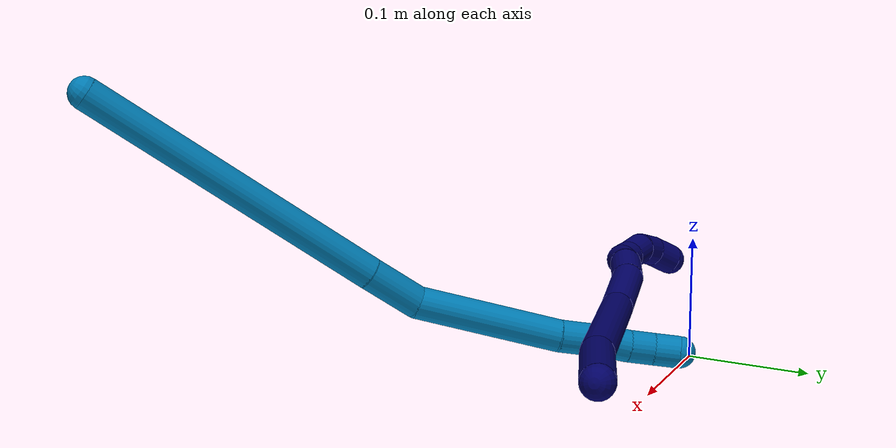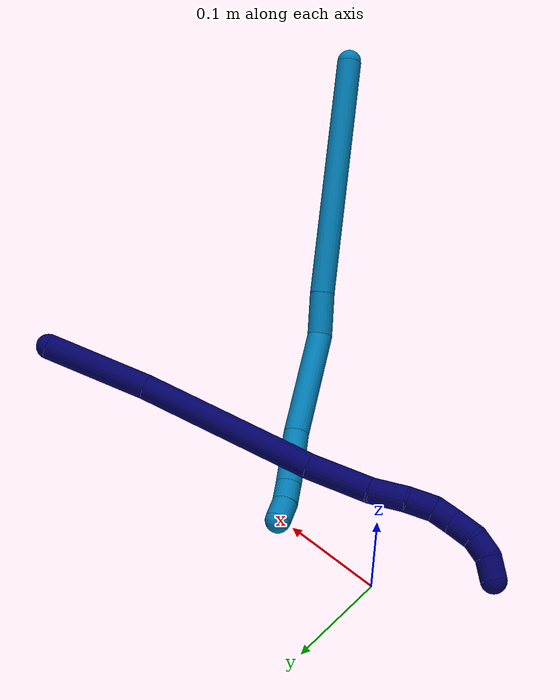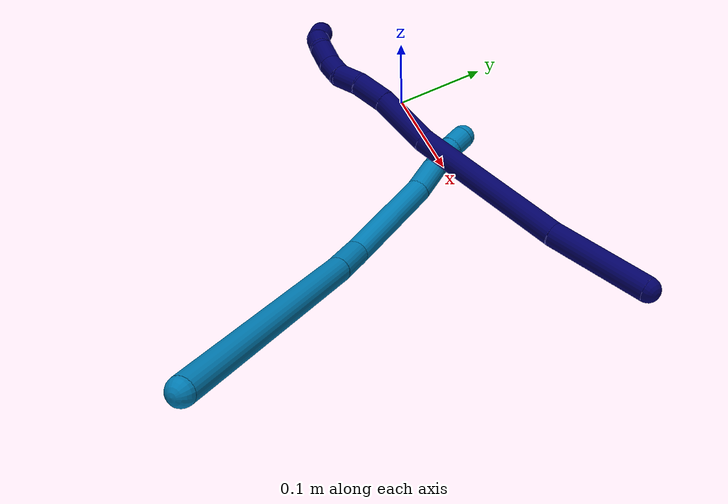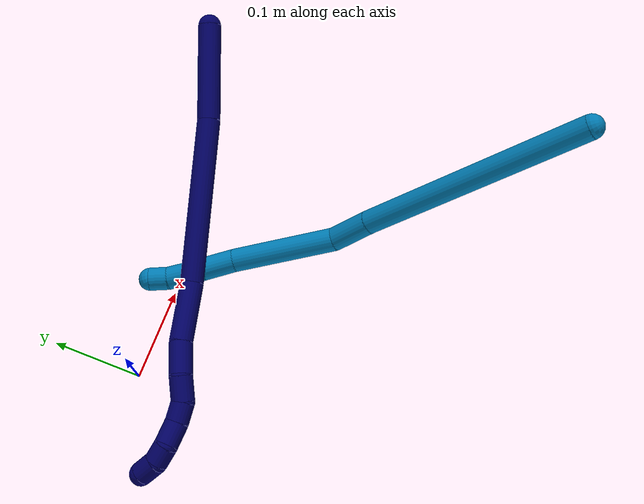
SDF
<sdf version="1.7">
 <world name="default">
  <model name="7">
   <static>0</static>
   <link name="7">
    <collision name="collision-cylinder-e_1_1_4">
     <pose>-0.00505 -0.010584 -0.051644 2.93945 -0.095505 -0.880684</pose>
     <geometry><cylinder><radius>0.0125</radius><length>0.105917</length></cylinder></geometry>
     <surface>
      <friction><ode><mu>1.16</mu><mu2>1.16</mu2><slip1>0</slip1><slip2>0</slip2></ode></friction>
      <contact><ode><kp>1e+06</kp><kd>1</kd><max_vel>0</max_vel><min_depth>0.001</min_depth></ode></contact>
     </surface>
    </collision>
    <visual name="visual-cylinder-e_1_1_4">
     <pose>-0.00505 -0.010584 -0.051644 2.93945 -0.095505 -0.880684</pose>
     <geometry><cylinder><radius>0.0125</radius><length>0.105917</length></cylinder></geometry>
     <material><ambient>0.003922 0 0.403922 1</ambient></material>
    </visual>
    <collision name="collision-cylinder-e_2_4_5">
     <pose>-0.021445 -0.031274 -0.191077 3.02699 -0.127685 -1.67893</pose>
     <geometry><cylinder><radius>0.0125</radius><length>0.178189</length></cylinder></geometry>
     <surface>
      <friction><ode><mu>1.16</mu><mu2>1.16</mu2><slip1>0</slip1><slip2>0</slip2></ode></friction>
      <contact><ode><kp>1e+06</kp><kd>1</kd><max_vel>0</max_vel><min_depth>0.001</min_depth></ode></contact>
     </surface>
    </collision>
    <visual name="visual-cylinder-e_2_4_5">
     <pose>-0.021445 -0.031274 -0.191077 3.02699 -0.127685 -1.67893</pose>
     <geometry><cylinder><radius>0.0125</radius><length>0.178189</length></cylinder></geometry>
     <material><ambient>0.003922 0 0.403922 1</ambient></material>
    </visual>
    <collision name="collision-cylinder-e_3_5_6">
     <pose>-0.043324 -0.043508 -0.309485 3.07219 -0.330593 -2.73122</pose>
     <geometry><cylinder><radius>0.0125</radius><length>0.064901</length></cylinder></geometry>
     <surface>
      <friction><ode><mu>1.16</mu><mu2>1.16</mu2><slip1>0</slip1><slip2>0</slip2></ode></friction>
      <contact><ode><kp>1e+06</kp><kd>1</kd><max_vel>0</max_vel><min_depth>0.001</min_depth></ode></contact>
     </surface>
    </collision>
    <visual name="visual-cylinder-e_3_5_6">
     <pose>-0.043324 -0.043508 -0.309485 3.07219 -0.330593 -2.73122</pose>
     <geometry><cylinder><radius>0.0125</radius><length>0.064901</length></cylinder></geometry>
     <material><ambient>0.003922 0 0.403922 1</ambient></material>
    </visual>
    <collision name="collision-cylinder-e_4_6_7">
     <pose>-0.059106 -0.049797 -0.356157 2.88798 -0.306528 -1.76163</pose>
     <geometry><cylinder><radius>0.0125</radius><length>0.034786</length></cylinder></geometry>
     <surface>
      <friction><ode><mu>1.16</mu><mu2>1.16</mu2><slip1>0</slip1><slip2>0</slip2></ode></friction>
      <contact><ode><kp>1e+06</kp><kd>1</kd><max_vel>0</max_vel><min_depth>0.001</min_depth></ode></contact>
     </surface>
    </collision>
    <visual name="visual-cylinder-e_4_6_7">
     <pose>-0.059106 -0.049797 -0.356157 2.88798 -0.306528 -1.76163</pose>
     <geometry><cylinder><radius>0.0125</radius><length>0.034786</length></cylinder></geometry>
     <material><ambient>0.003922 0 0.403922 1</ambient></material>
    </visual>
    <collision name="collision-cylinder-e_5_7_8">
     <pose>-0.065331 -0.057884 -0.385107 2.84606 -0.072311 -0.476759</pose>
     <geometry><cylinder><radius>0.0125</radius><length>0.027038</length></cylinder></geometry>
     <surface>
      <friction><ode><mu>1.16</mu><mu2>1.16</mu2><slip1>0</slip1><slip2>0</slip2></ode></friction>
      <contact><ode><kp>1e+06</kp><kd>1</kd><max_vel>0</max_vel><min_depth>0.001</min_depth></ode></contact>
     </surface>
    </collision>
    <visual name="visual-cylinder-e_5_7_8">
     <pose>-0.065331 -0.057884 -0.385107 2.84606 -0.072311 -0.476759</pose>
     <geometry><cylinder><radius>0.0125</radius><length>0.027038</length></cylinder></geometry>
     <material><ambient>0.003922 0 0.403922 1</ambient></material>
    </visual>
    <collision name="collision-cylinder-e_6_8_9">
     <pose>-0.067801 -0.060957 -0.408676 -3.06166 -0.13864 2.09657</pose>
     <geometry><cylinder><radius>0.0125</radius><length>0.021615</length></cylinder></geometry>
     <surface>
      <friction><ode><mu>1.16</mu><mu2>1.16</mu2><slip1>0</slip1><slip2>0</slip2></ode></friction>
      <contact><ode><kp>1e+06</kp><kd>1</kd><max_vel>0</max_vel><min_depth>0.001</min_depth></ode></contact>
     </surface>
    </collision>
    <visual name="visual-cylinder-e_6_8_9">
     <pose>-0.067801 -0.060957 -0.408676 -3.06166 -0.13864 2.09657</pose>
     <geometry><cylinder><radius>0.0125</radius><length>0.021615</length></cylinder></geometry>
     <material><ambient>0.003922 0 0.403922 1</ambient></material>
    </visual>
    <collision name="collision-cylinder-e_7_9_10">
     <pose>-0.072755 -0.0575 -0.431098 -2.92371 -0.279888 1.82117</pose>
     <geometry><cylinder><radius>0.0125</radius><length>0.025049</length></cylinder></geometry>
     <surface>
      <friction><ode><mu>1.16</mu><mu2>1.16</mu2><slip1>0</slip1><slip2>0</slip2></ode></friction>
      <contact><ode><kp>1e+06</kp><kd>1</kd><max_vel>0</max_vel><min_depth>0.001</min_depth></ode></contact>
     </surface>
    </collision>
    <visual name="visual-cylinder-e_7_9_10">
     <pose>-0.072755 -0.0575 -0.431098 -2.92371 -0.279888 1.82117</pose>
     <geometry><cylinder><radius>0.0125</radius><length>0.025049</length></cylinder></geometry>
     <material><ambient>0.003922 0 0.403922 1</ambient></material>
    </visual>
    <collision name="collision-cylinder-e_8_10_11">
     <pose>-0.075286 -0.051331 -0.452482 -2.78686 0.090151 -0.493041</pose>
     <geometry><cylinder><radius>0.0125</radius><length>0.020628</length></cylinder></geometry>
     <surface>
      <friction><ode><mu>1.16</mu><mu2>1.16</mu2><slip1>0</slip1><slip2>0</slip2></ode></friction>
      <contact><ode><kp>1e+06</kp><kd>1</kd><max_vel>0</max_vel><min_depth>0.001</min_depth></ode></contact>
     </surface>
    </collision>
    <visual name="visual-cylinder-e_8_10_11">
     <pose>-0.075286 -0.051331 -0.452482 -2.78686 0.090151 -0.493041</pose>
     <geometry><cylinder><radius>0.0125</radius><length>0.020628</length></cylinder></geometry>
     <material><ambient>0.003922 0 0.403922 1</ambient></material>
    </visual>
    <collision name="collision-cylinder-e_9_11_2">
     <pose>-0.071199 -0.041023 -0.470132 -2.44252 0.292879 -0.769015</pose>
     <geometry><cylinder><radius>0.0125</radius><length>0.021879</length></cylinder></geometry>
     <surface>
      <friction><ode><mu>1.16</mu><mu2>1.16</mu2><slip1>0</slip1><slip2>0</slip2></ode></friction>
      <contact><ode><kp>1e+06</kp><kd>1</kd><max_vel>0</max_vel><min_depth>0.001</min_depth></ode></contact>
     </surface>
    </collision>
    <visual name="visual-cylinder-e_9_11_2">
     <pose>-0.071199 -0.041023 -0.470132 -2.44252 0.292879 -0.769015</pose>
     <geometry><cylinder><radius>0.0125</radius><length>0.021879</length></cylinder></geometry>
     <material><ambient>0.003922 0 0.403922 1</ambient></material>
    </visual>
    <collision name="collision-sphere-2">
     <pose>-0.068041 -0.034283 -0.478149 0 -0 0</pose>
     <geometry><sphere><radius>0.0125</radius></sphere></geometry>
     <surface>
      <friction><ode><mu>1.16</mu><mu2>1.16</mu2><slip1>0</slip1><slip2>0</slip2></ode></friction>
      <contact><ode><kp>1e+06</kp><kd>1</kd><max_vel>0</max_vel><min_depth>0.001</min_depth></ode></contact>
     </surface>
    </collision>
    <visual name="visual-sphere-2">
     <pose>-0.068041 -0.034283 -0.478149 0 -0 0</pose>
     <geometry><sphere><radius>0.0125</radius></sphere></geometry>
     <material><ambient>0.003922 0 0.403922 1</ambient></material>
    </visual>
    <collision name="collision-sphere-11">
     <pose>-0.074357 -0.047763 -0.462115 0 -0 0</pose>
     <geometry><sphere><radius>0.0125</radius></sphere></geometry>
     <surface>
      <friction><ode><mu>1.16</mu><mu2>1.16</mu2><slip1>0</slip1><slip2>0</slip2></ode></friction>
      <contact><ode><kp>1e+06</kp><kd>1</kd><max_vel>0</max_vel><min_depth>0.001</min_depth></ode></contact>
     </surface>
    </collision>
    <visual name="visual-sphere-11">
     <pose>-0.074357 -0.047763 -0.462115 0 -0 0</pose>
     <geometry><sphere><radius>0.0125</radius></sphere></geometry>
     <material><ambient>0.003922 0 0.403922 1</ambient></material>
    </visual>
    <collision name="collision-sphere-10">
     <pose>-0.076214 -0.054898 -0.44285 0 -0 0</pose>
     <geometry><sphere><radius>0.0125</radius></sphere></geometry>
     <surface>
      <friction><ode><mu>1.16</mu><mu2>1.16</mu2><slip1>0</slip1><slip2>0</slip2></ode></friction>
      <contact><ode><kp>1e+06</kp><kd>1</kd><max_vel>0</max_vel><min_depth>0.001</min_depth></ode></contact>
     </surface>
    </collision>
    <visual name="visual-sphere-10">
     <pose>-0.076214 -0.054898 -0.44285 0 -0 0</pose>
     <geometry><sphere><radius>0.0125</radius></sphere></geometry>
     <material><ambient>0.003922 0 0.403922 1</ambient></material>
    </visual>
    <collision name="collision-sphere-9">
     <pose>-0.069295 -0.060102 -0.419345 0 -0 0</pose>
     <geometry><sphere><radius>0.0125</radius></sphere></geometry>
     <surface>
      <friction><ode><mu>1.16</mu><mu2>1.16</mu2><slip1>0</slip1><slip2>0</slip2></ode></friction>
      <contact><ode><kp>1e+06</kp><kd>1</kd><max_vel>0</max_vel><min_depth>0.001</min_depth></ode></contact>
     </surface>
    </collision>
    <visual name="visual-sphere-9">
     <pose>-0.069295 -0.060102 -0.419345 0 -0 0</pose>
     <geometry><sphere><radius>0.0125</radius></sphere></geometry>
     <material><ambient>0.003922 0 0.403922 1</ambient></material>
    </visual>
    <collision name="collision-sphere-4">
     <pose>-0.0101 -0.021168 -0.103287 0 -0 0</pose>
     <geometry><sphere><radius>0.0125</radius></sphere></geometry>
     <surface>
      <friction><ode><mu>1.16</mu><mu2>1.16</mu2><slip1>0</slip1><slip2>0</slip2></ode></friction>
      <contact><ode><kp>1e+06</kp><kd>1</kd><max_vel>0</max_vel><min_depth>0.001</min_depth></ode></contact>
     </surface>
    </collision>
    <visual name="visual-sphere-4">
     <pose>-0.0101 -0.021168 -0.103287 0 -0 0</pose>
     <geometry><sphere><radius>0.0125</radius></sphere></geometry>
     <material><ambient>0.003922 0 0.403922 1</ambient></material>
    </visual>
    <collision name="collision-sphere-1">
     <geometry><sphere><radius>0.0125</radius></sphere></geometry>
     <surface>
      <friction><ode><mu>1.16</mu><mu2>1.16</mu2><slip1>0</slip1><slip2>0</slip2></ode></friction>
      <contact><ode><kp>1e+06</kp><kd>1</kd><max_vel>0</max_vel><min_depth>0.001</min_depth></ode></contact>
     </surface>
    </collision>
    <visual name="visual-sphere-1">
     <geometry><sphere><radius>0.0125</radius></sphere></geometry>
     <material><ambient>0.003922 0 0.403922 1</ambient></material>
    </visual>
    <collision name="collision-sphere-8">
     <pose>-0.066308 -0.061812 -0.398006 0 -0 0</pose>
     <geometry><sphere><radius>0.0125</radius></sphere></geometry>
     <surface>
      <friction><ode><mu>1.16</mu><mu2>1.16</mu2><slip1>0</slip1><slip2>0</slip2></ode></friction>
      <contact><ode><kp>1e+06</kp><kd>1</kd><max_vel>0</max_vel><min_depth>0.001</min_depth></ode></contact>
     </surface>
    </collision>
    <visual name="visual-sphere-8">
     <pose>-0.066308 -0.061812 -0.398006 0 -0 0</pose>
     <geometry><sphere><radius>0.0125</radius></sphere></geometry>
     <material><ambient>0.003922 0 0.403922 1</ambient></material>
    </visual>
    <collision name="collision-sphere-5">
     <pose>-0.032791 -0.041379 -0.278866 0 -0 0</pose>
     <geometry><sphere><radius>0.0125</radius></sphere></geometry>
     <surface>
      <friction><ode><mu>1.16</mu><mu2>1.16</mu2><slip1>0</slip1><slip2>0</slip2></ode></friction>
      <contact><ode><kp>1e+06</kp><kd>1</kd><max_vel>0</max_vel><min_depth>0.001</min_depth></ode></contact>
     </surface>
    </collision>
    <visual name="visual-sphere-5">
     <pose>-0.032791 -0.041379 -0.278866 0 -0 0</pose>
     <geometry><sphere><radius>0.0125</radius></sphere></geometry>
     <material><ambient>0.003922 0 0.403922 1</ambient></material>
    </visual>
    <collision name="collision-sphere-6">
     <pose>-0.053858 -0.045636 -0.340105 0 -0 0</pose>
     <geometry><sphere><radius>0.0125</radius></sphere></geometry>
     <surface>
      <friction><ode><mu>1.16</mu><mu2>1.16</mu2><slip1>0</slip1><slip2>0</slip2></ode></friction>
      <contact><ode><kp>1e+06</kp><kd>1</kd><max_vel>0</max_vel><min_depth>0.001</min_depth></ode></contact>
     </surface>
    </collision>
    <visual name="visual-sphere-6">
     <pose>-0.053858 -0.045636 -0.340105 0 -0 0</pose>
     <geometry><sphere><radius>0.0125</radius></sphere></geometry>
     <material><ambient>0.003922 0 0.403922 1</ambient></material>
    </visual>
    <collision name="collision-sphere-7">
     <pose>-0.064354 -0.053957 -0.372208 0 -0 0</pose>
     <geometry><sphere><radius>0.0125</radius></sphere></geometry>
     <surface>
      <friction><ode><mu>1.16</mu><mu2>1.16</mu2><slip1>0</slip1><slip2>0</slip2></ode></friction>
      <contact><ode><kp>1e+06</kp><kd>1</kd><max_vel>0</max_vel><min_depth>0.001</min_depth></ode></contact>
     </surface>
    </collision>
    <visual name="visual-sphere-7">
     <pose>-0.064354 -0.053957 -0.372208 0 -0 0</pose>
     <geometry><sphere><radius>0.0125</radius></sphere></geometry>
     <material><ambient>0.003922 0 0.403922 1</ambient></material>
    </visual>
    <inertial>
     <pose>-0.034778 -0.035058 -0.243313 0 -0 0</pose>
     <mass>0.5</mass>
     <inertia>
      <ixx>-0.000575</ixx>
      <ixy>0</ixy>
      <ixz>0</ixz>
      <iyy>-0.00055</iyy>
      <iyz>0</iyz>
      <izz>0.00012</izz>
     </inertia>
    </inertial>
   </link>
   <pose>0.369692 0.061767 0.111955 -0.061059 1.29769 0.108005</pose>
  </model>
  <model name="9">
   <static>0</static>
   <link name="9">
    <collision name="collision-cylinder-e_1_1_4">
     <pose>-0.006114 0.003109 -0.123856 -3.1165 -0.049306 2.20006</pose>
     <geometry><cylinder><radius>0.0125</radius><length>0.248092</length></cylinder></geometry>
     <surface>
      <friction><ode><mu>1.16</mu><mu2>1.16</mu2><slip1>0</slip1><slip2>0</slip2></ode></friction>
      <contact><ode><kp>1e+06</kp><kd>1</kd><max_vel>0</max_vel><min_depth>0.001</min_depth></ode></contact>
     </surface>
    </collision>
    <visual name="visual-cylinder-e_1_1_4">
     <pose>-0.006114 0.003109 -0.123856 -3.1165 -0.049306 2.20006</pose>
     <geometry><cylinder><radius>0.0125</radius><length>0.248092</length></cylinder></geometry>
     <material><ambient>0 0.490196 0.709804 1</ambient></material>
    </visual>
    <collision name="collision-cylinder-e_2_4_5">
     <pose>-0.014444 0.006257 -0.2697 -3.13985 -0.100482 3.10696</pose>
     <geometry><cylinder><radius>0.0125</radius><length>0.044199</length></cylinder></geometry>
     <surface>
      <friction><ode><mu>1.16</mu><mu2>1.16</mu2><slip1>0</slip1><slip2>0</slip2></ode></friction>
      <contact><ode><kp>1e+06</kp><kd>1</kd><max_vel>0</max_vel><min_depth>0.001</min_depth></ode></contact>
     </surface>
    </collision>
    <visual name="visual-cylinder-e_2_4_5">
     <pose>-0.014444 0.006257 -0.2697 -3.13985 -0.100482 3.10696</pose>
     <geometry><cylinder><radius>0.0125</radius><length>0.044199</length></cylinder></geometry>
     <material><ambient>0 0.490196 0.709804 1</ambient></material>
    </visual>
    <collision name="collision-cylinder-e_3_5_6">
     <pose>-0.023651 0.026946 -0.343294 -2.76094 -0.125098 0.628619</pose>
     <geometry><cylinder><radius>0.0125</radius><length>0.112044</length></cylinder></geometry>
     <surface>
      <friction><ode><mu>1.16</mu><mu2>1.16</mu2><slip1>0</slip1><slip2>0</slip2></ode></friction>
      <contact><ode><kp>1e+06</kp><kd>1</kd><max_vel>0</max_vel><min_depth>0.001</min_depth></ode></contact>
     </surface>
    </collision>
    <visual name="visual-cylinder-e_3_5_6">
     <pose>-0.023651 0.026946 -0.343294 -2.76094 -0.125098 0.628619</pose>
     <geometry><cylinder><radius>0.0125</radius><length>0.112044</length></cylinder></geometry>
     <material><ambient>0 0.490196 0.709804 1</ambient></material>
    </visual>
    <collision name="collision-cylinder-e_4_6_7">
     <pose>-0.034886 0.0546 -0.410442 -2.71826 -0.24405 1.03719</pose>
     <geometry><cylinder><radius>0.0125</radius><length>0.035134</length></cylinder></geometry>
     <surface>
      <friction><ode><mu>1.16</mu><mu2>1.16</mu2><slip1>0</slip1><slip2>0</slip2></ode></friction>
      <contact><ode><kp>1e+06</kp><kd>1</kd><max_vel>0</max_vel><min_depth>0.001</min_depth></ode></contact>
     </surface>
    </collision>
    <visual name="visual-cylinder-e_4_6_7">
     <pose>-0.034886 0.0546 -0.410442 -2.71826 -0.24405 1.03719</pose>
     <geometry><cylinder><radius>0.0125</radius><length>0.035134</length></cylinder></geometry>
     <material><ambient>0 0.490196 0.709804 1</ambient></material>
    </visual>
    <collision name="collision-cylinder-e_5_7_8">
     <pose>-0.041118 0.065208 -0.435252 -2.77063 -0.197169 0.970189</pose>
     <geometry><cylinder><radius>0.0125</radius><length>0.020284</length></cylinder></geometry>
     <surface>
      <friction><ode><mu>1.16</mu><mu2>1.16</mu2><slip1>0</slip1><slip2>0</slip2></ode></friction>
      <contact><ode><kp>1e+06</kp><kd>1</kd><max_vel>0</max_vel><min_depth>0.001</min_depth></ode></contact>
     </surface>
    </collision>
    <visual name="visual-cylinder-e_5_7_8">
     <pose>-0.041118 0.065208 -0.435252 -2.77063 -0.197169 0.970189</pose>
     <geometry><cylinder><radius>0.0125</radius><length>0.020284</length></cylinder></geometry>
     <material><ambient>0 0.490196 0.709804 1</ambient></material>
    </visual>
    <collision name="collision-cylinder-e_6_8_9">
     <pose>-0.045227 0.073034 -0.453348 -2.69553 -0.213653 0.883318</pose>
     <geometry><cylinder><radius>0.0125</radius><length>0.020023</length></cylinder></geometry>
     <surface>
      <friction><ode><mu>1.16</mu><mu2>1.16</mu2><slip1>0</slip1><slip2>0</slip2></ode></friction>
      <contact><ode><kp>1e+06</kp><kd>1</kd><max_vel>0</max_vel><min_depth>0.001</min_depth></ode></contact>
     </surface>
    </collision>
    <visual name="visual-cylinder-e_6_8_9">
     <pose>-0.045227 0.073034 -0.453348 -2.69553 -0.213653 0.883318</pose>
     <geometry><cylinder><radius>0.0125</radius><length>0.020023</length></cylinder></geometry>
     <material><ambient>0 0.490196 0.709804 1</ambient></material>
    </visual>
    <collision name="collision-cylinder-e_7_9_2">
     <pose>-0.048121 0.082687 -0.470669 -2.57266 -0.07635 0.259773</pose>
     <geometry><cylinder><radius>0.0125</radius><length>0.020223</length></cylinder></geometry>
     <surface>
      <friction><ode><mu>1.16</mu><mu2>1.16</mu2><slip1>0</slip1><slip2>0</slip2></ode></friction>
      <contact><ode><kp>1e+06</kp><kd>1</kd><max_vel>0</max_vel><min_depth>0.001</min_depth></ode></contact>
     </surface>
    </collision>
    <visual name="visual-cylinder-e_7_9_2">
     <pose>-0.048121 0.082687 -0.470669 -2.57266 -0.07635 0.259773</pose>
     <geometry><cylinder><radius>0.0125</radius><length>0.020223</length></cylinder></geometry>
     <material><ambient>0 0.490196 0.709804 1</ambient></material>
    </visual>
    <collision name="collision-sphere-2">
     <pose>-0.048893 0.088118 -0.479163 0 -0 0</pose>
     <geometry><sphere><radius>0.0125</radius></sphere></geometry>
     <surface>
      <friction><ode><mu>1.16</mu><mu2>1.16</mu2><slip1>0</slip1><slip2>0</slip2></ode></friction>
      <contact><ode><kp>1e+06</kp><kd>1</kd><max_vel>0</max_vel><min_depth>0.001</min_depth></ode></contact>
     </surface>
    </collision>
    <visual name="visual-sphere-2">
     <pose>-0.048893 0.088118 -0.479163 0 -0 0</pose>
     <geometry><sphere><radius>0.0125</radius></sphere></geometry>
     <material><ambient>0 0.490196 0.709804 1</ambient></material>
    </visual>
    <collision name="collision-sphere-9">
     <pose>-0.04735 0.077255 -0.462175 0 -0 0</pose>
     <geometry><sphere><radius>0.0125</radius></sphere></geometry>
     <surface>
      <friction><ode><mu>1.16</mu><mu2>1.16</mu2><slip1>0</slip1><slip2>0</slip2></ode></friction>
      <contact><ode><kp>1e+06</kp><kd>1</kd><max_vel>0</max_vel><min_depth>0.001</min_depth></ode></contact>
     </surface>
    </collision>
    <visual name="visual-sphere-9">
     <pose>-0.04735 0.077255 -0.462175 0 -0 0</pose>
     <geometry><sphere><radius>0.0125</radius></sphere></geometry>
     <material><ambient>0 0.490196 0.709804 1</ambient></material>
    </visual>
    <collision name="collision-sphere-4">
     <pose>-0.012228 0.006218 -0.247712 0 -0 0</pose>
     <geometry><sphere><radius>0.0125</radius></sphere></geometry>
     <surface>
      <friction><ode><mu>1.16</mu><mu2>1.16</mu2><slip1>0</slip1><slip2>0</slip2></ode></friction>
      <contact><ode><kp>1e+06</kp><kd>1</kd><max_vel>0</max_vel><min_depth>0.001</min_depth></ode></contact>
     </surface>
    </collision>
    <visual name="visual-sphere-4">
     <pose>-0.012228 0.006218 -0.247712 0 -0 0</pose>
     <geometry><sphere><radius>0.0125</radius></sphere></geometry>
     <material><ambient>0 0.490196 0.709804 1</ambient></material>
    </visual>
    <collision name="collision-sphere-1">
     <geometry><sphere><radius>0.0125</radius></sphere></geometry>
     <surface>
      <friction><ode><mu>1.16</mu><mu2>1.16</mu2><slip1>0</slip1><slip2>0</slip2></ode></friction>
      <contact><ode><kp>1e+06</kp><kd>1</kd><max_vel>0</max_vel><min_depth>0.001</min_depth></ode></contact>
     </surface>
    </collision>
    <visual name="visual-sphere-1">
     <geometry><sphere><radius>0.0125</radius></sphere></geometry>
     <material><ambient>0 0.490196 0.709804 1</ambient></material>
    </visual>
    <collision name="collision-sphere-8">
     <pose>-0.043104 0.068813 -0.444522 0 -0 0</pose>
     <geometry><sphere><radius>0.0125</radius></sphere></geometry>
     <surface>
      <friction><ode><mu>1.16</mu><mu2>1.16</mu2><slip1>0</slip1><slip2>0</slip2></ode></friction>
      <contact><ode><kp>1e+06</kp><kd>1</kd><max_vel>0</max_vel><min_depth>0.001</min_depth></ode></contact>
     </surface>
    </collision>
    <visual name="visual-sphere-8">
     <pose>-0.043104 0.068813 -0.444522 0 -0 0</pose>
     <geometry><sphere><radius>0.0125</radius></sphere></geometry>
     <material><ambient>0 0.490196 0.709804 1</ambient></material>
    </visual>
    <collision name="collision-sphere-5">
     <pose>-0.016661 0.006295 -0.291688 0 -0 0</pose>
     <geometry><sphere><radius>0.0125</radius></sphere></geometry>
     <surface>
      <friction><ode><mu>1.16</mu><mu2>1.16</mu2><slip1>0</slip1><slip2>0</slip2></ode></friction>
      <contact><ode><kp>1e+06</kp><kd>1</kd><max_vel>0</max_vel><min_depth>0.001</min_depth></ode></contact>
     </surface>
    </collision>
    <visual name="visual-sphere-5">
     <pose>-0.016661 0.006295 -0.291688 0 -0 0</pose>
     <geometry><sphere><radius>0.0125</radius></sphere></geometry>
     <material><ambient>0 0.490196 0.709804 1</ambient></material>
    </visual>
    <collision name="collision-sphere-6">
     <pose>-0.030641 0.047597 -0.3949 0 -0 0</pose>
     <geometry><sphere><radius>0.0125</radius></sphere></geometry>
     <surface>
      <friction><ode><mu>1.16</mu><mu2>1.16</mu2><slip1>0</slip1><slip2>0</slip2></ode></friction>
      <contact><ode><kp>1e+06</kp><kd>1</kd><max_vel>0</max_vel><min_depth>0.001</min_depth></ode></contact>
     </surface>
    </collision>
    <visual name="visual-sphere-6">
     <pose>-0.030641 0.047597 -0.3949 0 -0 0</pose>
     <geometry><sphere><radius>0.0125</radius></sphere></geometry>
     <material><ambient>0 0.490196 0.709804 1</ambient></material>
    </visual>
    <collision name="collision-sphere-7">
     <pose>-0.039131 0.061602 -0.425983 0 -0 0</pose>
     <geometry><sphere><radius>0.0125</radius></sphere></geometry>
     <surface>
      <friction><ode><mu>1.16</mu><mu2>1.16</mu2><slip1>0</slip1><slip2>0</slip2></ode></friction>
      <contact><ode><kp>1e+06</kp><kd>1</kd><max_vel>0</max_vel><min_depth>0.001</min_depth></ode></contact>
     </surface>
    </collision>
    <visual name="visual-sphere-7">
     <pose>-0.039131 0.061602 -0.425983 0 -0 0</pose>
     <geometry><sphere><radius>0.0125</radius></sphere></geometry>
     <material><ambient>0 0.490196 0.709804 1</ambient></material>
    </visual>
    <inertial>
     <pose>-0.017487 0.020885 -0.245915 0 -0 0</pose>
     <mass>0.5</mass>
     <inertia>
      <ixx>0.00045</ixx>
      <ixy>0</ixy>
      <ixz>0</ixz>
      <iyy>0.001792</iyy>
      <iyz>0</iyz>
      <izz>-3.7e-05</izz>
     </inertia>
    </inertial>
   </link>
   <pose>0.334969 -0.345421 0.254875 0.856867 0.341595 0.273449</pose>
  </model>
 </world>
</sdf>
